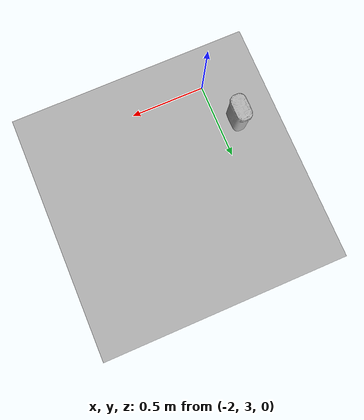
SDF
<sdf version='1.10'>
  <world name='empty'>
    <physics name='1ms' type='ignored'>
      <max_step_size>0.001</max_step_size>
      <real_time_factor>1</real_time_factor>
      <real_time_update_rate>1000</real_time_update_rate>
    </physics>
    <plugin name='gz::sim::systems::Physics' filename='gz-sim-physics-system'/>
    <plugin name='gz::sim::systems::UserCommands' filename='gz-sim-user-commands-system'/>
    <plugin name='gz::sim::systems::SceneBroadcaster' filename='gz-sim-scene-broadcaster-system'/>
    <plugin name='gz::sim::systems::Contact' filename='gz-sim-contact-system'/>
    <gravity>0 0 -9.8000000000000007</gravity>
    <magnetic_field>5.5644999999999998e-06 2.2875799999999999e-05 -4.2388400000000002e-05</magnetic_field>
    <atmosphere type='adiabatic'/>
    <scene>
      <ambient>0.400000006 0.400000006 0.400000006 1</ambient>
      <background>0.699999988 0.699999988 0.699999988 1</background>
      <shadows>true</shadows>
    </scene>
    <model name='ground_plane'>
      <static>true</static>
      <link name='link'>
        <collision name='collision'>
          <geometry>
            <plane>
              <normal>0 0 1</normal>
              <size>100 100</size>
            </plane>
          </geometry>
          <surface>
            <friction>
              <ode/>
            </friction>
            <bounce/>
            <contact/>
          </surface>
        </collision>
        <visual name='visual'>
          <geometry>
            <plane>
              <normal>0 0 1</normal>
              <size>100 100</size>
            </plane>
          </geometry>
          <material>
            <ambient>0.800000012 0.800000012 0.800000012 1</ambient>
            <diffuse>0.800000012 0.800000012 0.800000012 1</diffuse>
            <specular>0.800000012 0.800000012 0.800000012 1</specular>
          </material>
        </visual>
        <pose>0 0 0 0 0 0</pose>
        <inertial>
          <pose>0 0 0 0 0 0</pose>
          <mass>1</mass>
          <inertia>
            <ixx>1</ixx>
            <ixy>0</ixy>
            <ixz>0</ixz>
            <iyy>1</iyy>
            <iyz>0</iyz>
            <izz>1</izz>
          </inertia>
        </inertial>
        <enable_wind>false</enable_wind>
      </link>
      <pose>0 0 0 0 0 0</pose>
      <self_collide>false</self_collide>
    </model>
    <model name='box'>
      <pose>-1.5128904104858334 3.6902758940620632 0.5 0 0 0</pose>
      <link name='box_link'>
        <inertial>
          <inertia>
            <ixx>0.16666</ixx>
            <ixy>0</ixy>
            <ixz>0</ixz>
            <iyy>0.16666</iyy>
            <iyz>0</iyz>
            <izz>0.16666</izz>
          </inertia>
          <mass>1</mass>
          <pose>0 0 0 0 0 0</pose>
        </inertial>
        <collision name='box_collision'>
          <geometry>
            <box>
              <size>1 1 1</size>
            </box>
          </geometry>
          <surface>
            <friction>
              <ode/>
            </friction>
            <bounce/>
            <contact/>
          </surface>
        </collision>
        <visual name='box_visual'>
          <geometry>
            <box>
              <size>1 1 1</size>
            </box>
          </geometry>
          <material>
            <ambient>0.300000012 0.300000012 0.300000012 1</ambient>
            <diffuse>0.699999988 0.699999988 0.699999988 1</diffuse>
            <specular>1 1 1 1</specular>
          </material>
        </visual>
        <pose>0 0 0 0 0 0</pose>
        <enable_wind>false</enable_wind>
      </link>
      <static>false</static>
      <self_collide>false</self_collide>
    </model>
    <model name='breakfast_menu'>
      <link name='link_0'>
        <visual name='visual'>
          <geometry>
            <mesh>
              <uri>file:///home/pavan/.gz/fuel/fuel.gazebosim.org/openrobotics/models/breakfast menu original/1/meshes/model.obj</uri>
            </mesh>
          </geometry>
        </visual>
        <collision name='collision_0'>
          <geometry>
            <mesh>
              <uri>file:///home/pavan/.gz/fuel/fuel.gazebosim.org/openrobotics/models/breakfast menu original/1/meshes/model.obj</uri>
            </mesh>
          </geometry>
        </collision>
        <pose>0 0 0 0 0 0</pose>
        <inertial>
          <pose>0 0 0 0 0 0</pose>
          <mass>1</mass>
          <inertia>
            <ixx>1</ixx>
            <ixy>0</ixy>
            <ixz>0</ixz>
            <iyy>1</iyy>
            <iyz>0</iyz>
            <izz>1</izz>
          </inertia>
        </inertial>
        <enable_wind>false</enable_wind>
      </link>
      <pose>-1.8415199518203735 3.5322198867797852 1.0071729421615601 0 0 0</pose>
      <static>false</static>
      <self_collide>false</self_collide>
    </model>
    <light name='sun' type='directional'>
      <pose>0 0 10 0 0 0</pose>
      <cast_shadows>true</cast_shadows>
      <intensity>1</intensity>
      <direction>-0.5 0.10000000000000001 -0.90000000000000002</direction>
      <diffuse>0.800000012 0.800000012 0.800000012 1</diffuse>
      <specular>0.200000003 0.200000003 0.200000003 1</specular>
      <attenuation>
        <range>1000</range>
        <linear>0.01</linear>
        <constant>0.90000000000000002</constant>
        <quadratic>0.001</quadratic>
      </attenuation>
      <spot>
        <inner_angle>0</inner_angle>
        <outer_angle>0</outer_angle>
        <falloff>0</falloff>
      </spot>
    </light>
  </world>
</sdf>
